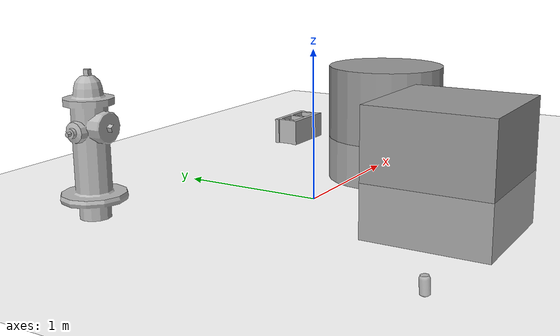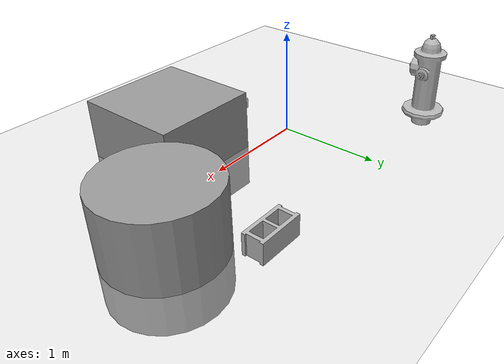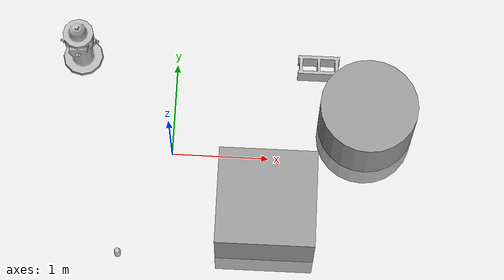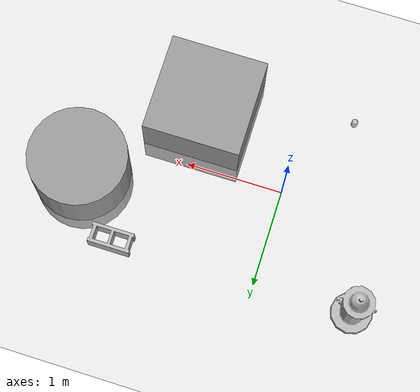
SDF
<sdf version="1.4">
 <world name="default">
  <light name="sun" type="directional">
   <pose>0 0 10 0 -0 0</pose>
   <diffuse>0.8 0.8 0.8 1</diffuse>
   <specular>0.2 0.2 0.2 1</specular>
   <attenuation>
    <range>1000</range>
    <constant>0.9</constant>
    <linear>0.01</linear>
    <quadratic>0.001</quadratic>
   </attenuation>
   <direction>-0.5 0.1 -0.9</direction>
  </light>
  <model name="ground_plane">
   <static>1</static>
   <link name="link">
    <collision name="collision">
     <geometry><plane><normal>0 0 1</normal><size>100 100</size></plane></geometry>
     <surface><friction><ode><mu>100</mu><mu2>50</mu2></ode></friction></surface>
    </collision>
    <visual name="visual">
     <cast_shadows>0</cast_shadows>
     <geometry><plane><normal>0 0 1</normal><size>100 100</size></plane></geometry>
     <material>
      <script><uri>file://media/materials/scripts/gazebo.material</uri><name>Gazebo/Grey</name></script>
     </material>
    </visual>
    <velocity_decay><linear>0</linear><angular>0</angular></velocity_decay>
   </link>
  </model>
  <physics type="ode">
   <max_step_size>0.001</max_step_size>
   <real_time_factor>1</real_time_factor>
   <real_time_update_rate>1000</real_time_update_rate>
   <gravity>0 0 -9.8</gravity>
  </physics>
  <scene><ambient>0.4 0.4 0.4 1</ambient><background>0.7 0.7 0.7 1</background><shadows>1</shadows></scene>
  <spherical_coordinates>
   <surface_model>EARTH_WGS84</surface_model>
   <latitude_deg>0</latitude_deg>
   <longitude_deg>0</longitude_deg>
   <elevation>0</elevation>
   <heading_deg>0</heading_deg>
  </spherical_coordinates>
  <model name="unit_box_1">
   <pose>1 -0.586808 0.067133 -3e-06 2.8e-05 -4e-06</pose>
   <link name="link">
    <inertial>
     <mass>1</mass>
     <inertia><ixx>1</ixx><ixy>0</ixy><ixz>0</ixz><iyy>1</iyy><iyz>0</iyz><izz>1</izz></inertia>
    </inertial>
    <collision name="collision">
     <geometry><box><size>0.168854 0.130991 0.134261</size></box></geometry>
    </collision>
    <visual name="visual">
     <geometry><box><size>1 1 1</size></box></geometry>
     <material>
      <script><uri>file://media/materials/scripts/gazebo.material</uri><name>Gazebo/Grey</name></script>
     </material>
    </visual>
    <velocity_decay><linear>0</linear><angular>0</angular></velocity_decay>
   </link>
   <static>0</static>
  </model>
  <model name="cinder_block">
   <link name="link">
    <inertial>
     <pose>0 0 0.1016 0 -0 0</pose>
     <mass>5</mass>
     <inertia>
      <ixx>0.028705</ixx>
      <ixy>0</ixy>
      <iyy>0.073708</iyy>
      <ixz>0</ixz>
      <iyz>0</iyz>
      <izz>0.06908</izz>
     </inertia>
    </inertial>
    <visual name="visual">
     <geometry><mesh><uri>model://cinder_block/meshes/cinder_block.dae</uri></mesh></geometry>
    </visual>
    <collision name="left">
     <pose>0 -0.08465 0.1016 0 -0 0</pose>
     <geometry><box><size>0.43495 0.0339 0.2032</size></box></geometry>
     <surface>
      <contact><ode><max_vel>0.1</max_vel><min_depth>0.001</min_depth></ode></contact>
      <friction><ode><mu>1</mu><mu2>1</mu2></ode></friction>
     </surface>
    </collision>
    <collision name="right">
     <pose>0 0.08465 0.1016 0 -0 0</pose>
     <geometry><box><size>0.43495 0.0339 0.2032</size></box></geometry>
     <surface>
      <contact><ode><max_vel>0.1</max_vel><min_depth>0.001</min_depth></ode></contact>
      <friction><ode><mu>1</mu><mu2>1</mu2></ode></friction>
     </surface>
    </collision>
    <collision name="front">
     <pose>0.18625 0 0.1016 0 -0 0</pose>
     <geometry><box><size>0.0339 0.1354 0.203</size></box></geometry>
     <surface>
      <contact><ode><max_vel>0.1</max_vel><min_depth>0.001</min_depth></ode></contact>
      <friction><ode><mu>1</mu><mu2>1</mu2></ode></friction>
     </surface>
    </collision>
    <collision name="middle">
     <pose>0 0 0.1016 0 -0 0</pose>
     <geometry><box><size>0.0339 0.1354 0.203</size></box></geometry>
     <surface>
      <contact><ode><max_vel>0.1</max_vel><min_depth>0.001</min_depth></ode></contact>
      <friction><ode><mu>1</mu><mu2>1</mu2></ode></friction>
     </surface>
    </collision>
    <collision name="back">
     <pose>-0.18625 0 0.1016 0 -0 0</pose>
     <geometry><box><size>0.0339 0.1354 0.203</size></box></geometry>
     <surface>
      <contact><ode><max_vel>0.1</max_vel><min_depth>0.001</min_depth></ode></contact>
      <friction><ode><mu>1</mu><mu2>1</mu2></ode></friction>
     </surface>
    </collision>
    <velocity_decay><linear>0</linear><angular>0</angular></velocity_decay>
   </link>
   <pose>1.48621 1 -6e-06 -1e-06 2.8e-05 -6.46235e-27</pose>
   <static>0</static>
  </model>
  <model name="coke_can">
   <link name="link">
    <inertial>
     <pose>-0.01 -0.012 0.15 0 -0 0</pose>
     <mass>0.39</mass>
     <inertia><ixx>0.00058</ixx><ixy>0</ixy><ixz>0</ixz><iyy>0.00058</iyy><iyz>0</iyz><izz>0.00019</izz></inertia>
    </inertial>
    <collision name="collision">
     <pose>0 0 -0.46 0 -0 0</pose>
     <geometry><mesh><uri>model://coke_can/meshes/coke_can.dae</uri></mesh></geometry>
     <surface>
      <friction><ode><mu>1</mu><mu2>1</mu2></ode></friction>
      <contact><ode><kp>1e+07</kp><kd>1</kd><min_depth>0.001</min_depth><max_vel>0.1</max_vel></ode></contact>
     </surface>
    </collision>
    <visual name="visual">
     <pose>0 0 -0.46 0 -0 0</pose>
     <geometry><mesh><uri>model://coke_can/meshes/coke_can.dae</uri></mesh></geometry>
    </visual>
    <velocity_decay><linear>0</linear><angular>0</angular></velocity_decay>
   </link>
   <pose>-0.510302 -1.00025 -0.004865 -0.061624 0.003231 -1.7e-05</pose>
   <static>0</static>
  </model>
  <model name="fire_hydrant">
   <static>1</static>
   <link name="link">
    <collision name="collision">
     <geometry><mesh><uri>model://fire_hydrant/meshes/fire_hydrant.dae</uri></mesh></geometry>
    </collision>
    <visual name="visual">
     <geometry><mesh><uri>model://fire_hydrant/meshes/fire_hydrant.dae</uri></mesh></geometry>
    </visual>
    <velocity_decay><linear>0</linear><angular>0</angular></velocity_decay>
   </link>
   <pose>-1 1 0 0 -0 0</pose>
  </model>
  <model name="unit_cylinder_1">
   <pose>2 0.40804 0.123646 0 0 -5e-06</pose>
   <link name="link">
    <inertial>
     <mass>1</mass>
     <inertia><ixx>1</ixx><ixy>0</ixy><ixz>0</ixz><iyy>1</iyy><iyz>0</iyz><izz>1</izz></inertia>
    </inertial>
    <collision name="collision">
     <geometry><cylinder><radius>0.084936</radius><length>0.247296</length></cylinder></geometry>
    </collision>
    <visual name="visual">
     <geometry><cylinder><radius>0.5</radius><length>1</length></cylinder></geometry>
     <material>
      <script><uri>file://media/materials/scripts/gazebo.material</uri><name>Gazebo/Grey</name></script>
     </material>
    </visual>
    <velocity_decay><linear>0</linear><angular>0</angular></velocity_decay>
   </link>
   <static>0</static>
  </model>
 </world>
</sdf>
